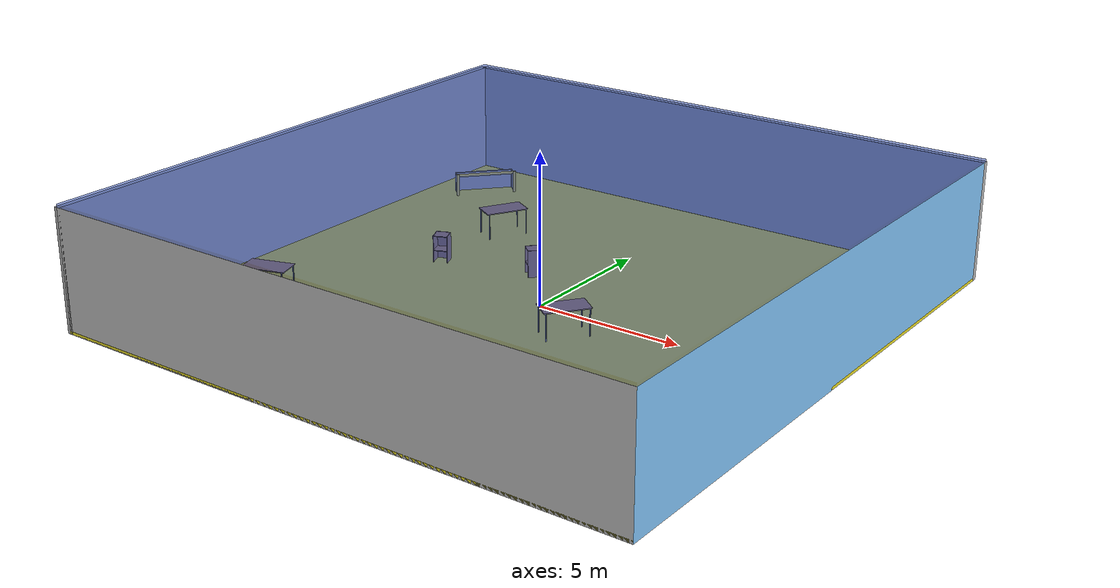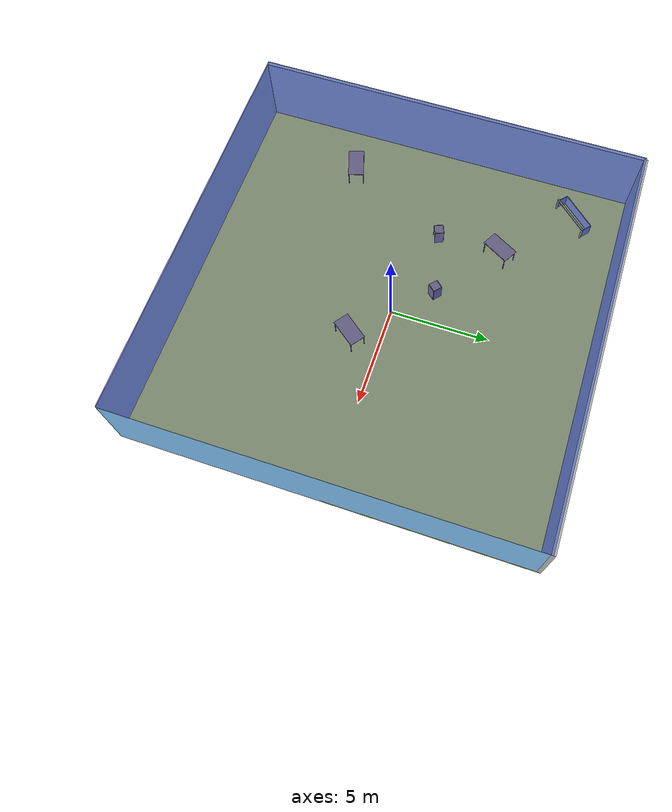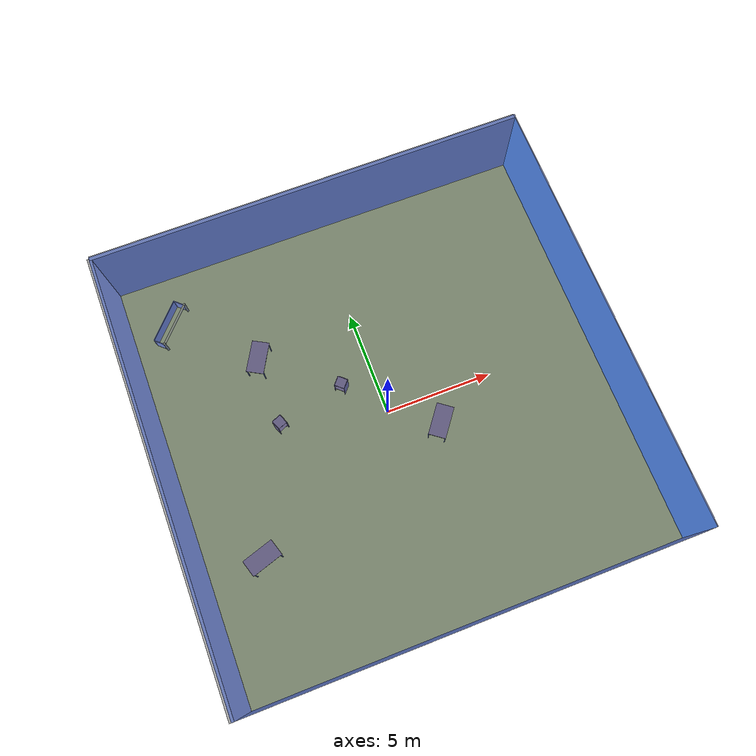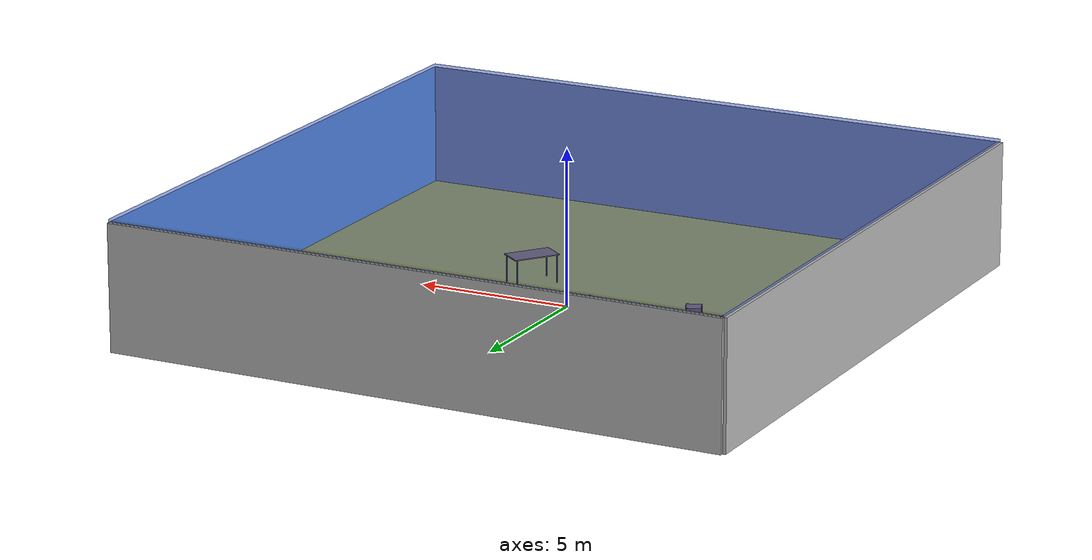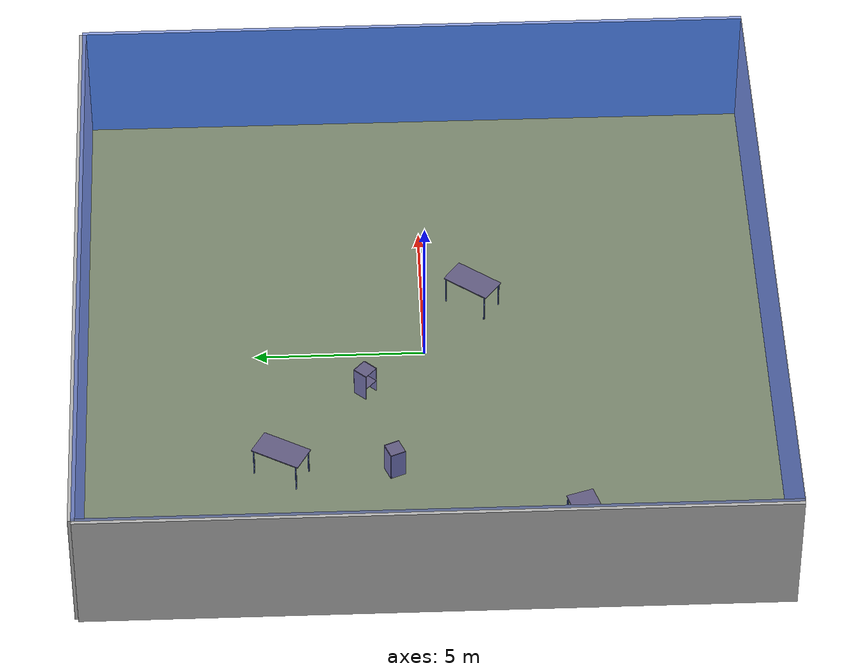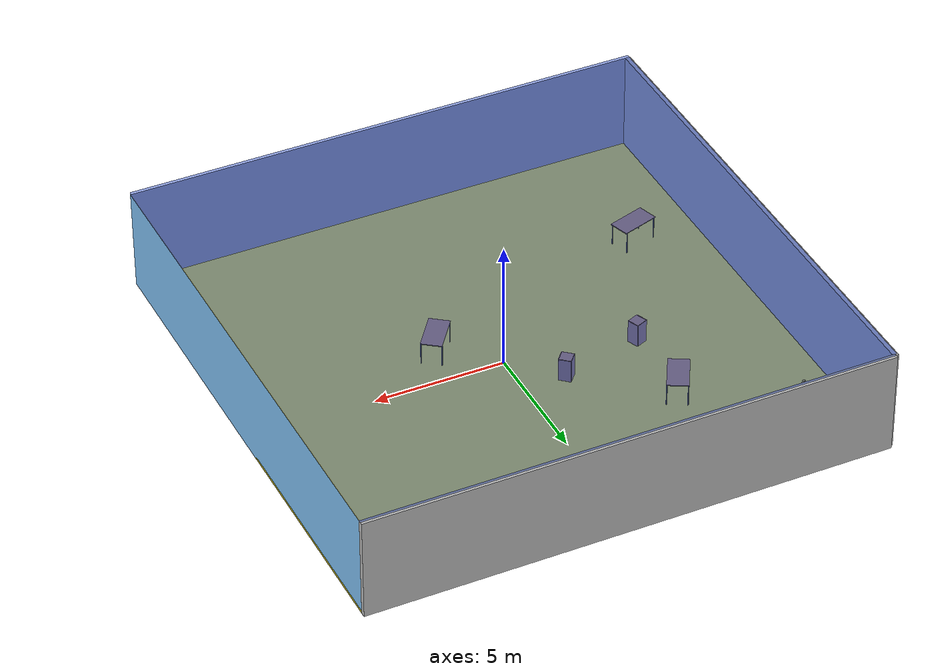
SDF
<sdf version="1.4">
 <world name="default">
  <physics type="ode">
   <max_step_size>0.001</max_step_size>
   <real_time_factor>1</real_time_factor>
   <real_time_update_rate>1000</real_time_update_rate>
   <gravity>0 0 -9.8</gravity>
  </physics>
  <scene><ambient>0.4 0.4 0.4 1</ambient><background>0.7 0.7 0.7 1</background><shadows>1</shadows></scene>
  <model name="Surrounding">
   <static>1</static>
   <link name="Ceiling">
    <collision name="Ceiling_Collision"><geometry><box><size>20 20 0.1</size></box></geometry></collision>
    <visual name="Ceiling_Visual">
     <geometry><box><size>20 20 0.1</size></box></geometry>
     <material>
      <script><uri>file://media/materials/scripts/gazebo.material</uri><name>Gazebo/BlueTransparent</name></script>
     </material>
    </visual>
    <pose>0 0 4.05 0 0 0</pose>
   </link>
   <link name="Wall_South">
    <collision name="Wall_South_Collision">
     <geometry><box><size>20 0 4</size></box></geometry>
     <pose>0 0 2 0 -0 0</pose>
    </collision>
    <visual name="Wall_South_Visual">
     <pose>0 0 2 0 -0 0</pose>
     <geometry><box><size>20 0 4</size></box></geometry>
     <material>
      <script><uri>file://media/materials/scripts/gazebo.material</uri><name>Gazebo/LightOn</name></script>
     </material>
    </visual>
    <velocity_decay><linear>0</linear><angular>0</angular></velocity_decay>
    <pose>0 -10 0 0 -0 0</pose>
   </link>
   <link name="Wall_East">
    <collision name="Wall_21_Collision">
     <geometry><box><size>20 0 4</size></box></geometry>
     <pose>0 0 2 0 -0 0</pose>
    </collision>
    <visual name="Wall_21_Visual">
     <pose>0 0 2 0 -0 0</pose>
     <geometry><box><size>20 0 4</size></box></geometry>
     <material>
      <script><uri>file://media/materials/scripts/gazebo.material</uri><name>Gazebo/SkyBlue</name></script>
     </material>
    </visual>
    <velocity_decay><linear>0</linear><angular>0</angular></velocity_decay>
    <pose>10 0 0 0 -0 1.5708</pose>
   </link>
   <link name="Wall_North">
    <collision name="Wall_22_Collision">
     <geometry><box><size>20 0.2 4</size></box></geometry>
     <pose>0 0 2 0 -0 0</pose>
    </collision>
    <visual name="Wall_22_Visual">
     <pose>0 0 2 0 -0 0</pose>
     <geometry><box><size>20 0.2 4</size></box></geometry>
     <material>
      <script><uri>file://media/materials/scripts/gazebo.material</uri><name>Gazebo/CloudySky</name></script>
     </material>
    </visual>
    <velocity_decay><linear>0</linear><angular>0</angular></velocity_decay>
    <pose>0 10 0 0 -0 0</pose>
   </link>
   <link name="Wall_West">
    <collision name="Wall_23_Collision">
     <geometry><box><size>20 0.2 4</size></box></geometry>
     <pose>0 0 2 0 -0 0</pose>
    </collision>
    <visual name="Wall_23_Visual">
     <pose>0 0 2 0 -0 0</pose>
     <geometry><box><size>20 0.2 4</size></box></geometry>
     <material>
      <script><uri>file://media/materials/scripts/gazebo.material</uri><name>Gazebo/PioneerBody</name></script>
     </material>
    </visual>
    <velocity_decay><linear>0</linear><angular>0</angular></velocity_decay>
    <pose>-10 0 0 0 0 -1.5708</pose>
   </link>
   <link name="Ground_link">
    <collision name="collision">
     <pose>0 0 .05 0 -0 0</pose>
     <geometry><box><size>20 20 0.1</size></box></geometry>
    </collision>
    <visual name="visual">
     <pose>0 0 .05 0 -0 0</pose>
     <geometry><box><size>20 20 0.1</size></box></geometry>
     <material>
      <script><uri>file://media/materials/scripts/gazebo.material</uri><name>Gazebo/YellowGlow</name></script>
     </material>
    </visual>
   </link>
   <static>1</static>
  </model>
  <spherical_coordinates>
   <surface_model>EARTH_WGS84</surface_model>
   <latitude_deg>0</latitude_deg>
   <longitude_deg>0</longitude_deg>
   <elevation>0</elevation>
   <heading_deg>0</heading_deg>
  </spherical_coordinates>
  <light name="lightball_0" type="diffuse">
   <diffuse>0.8 0.8 0.8 1</diffuse>
   <specular>0.2 0.2 0.2 1</specular>
   <attenuation>
    <range>100</range>
    <constant>0.7</constant>
    <linear>0.01</linear>
    <quadratic>0.001</quadratic>
   </attenuation>
   <direction>-0.5 0.1 -0.9</direction>
   <pose>6.83173820157 -1.8046738377 3.46066389849 0 0 0</pose>
  </light>
  <light name="lightball_1" type="diffuse">
   <diffuse>0.8 0.8 0.8 1</diffuse>
   <specular>0.2 0.2 0.2 1</specular>
   <attenuation>
    <range>100</range>
    <constant>0.7</constant>
    <linear>0.01</linear>
    <quadratic>0.001</quadratic>
   </attenuation>
   <direction>-0.5 0.1 -0.9</direction>
   <pose>-9.12523619573 -8.28907562996 3.14548461597 0 0 0</pose>
  </light>
  <light name="lightball_2" type="diffuse">
   <diffuse>0.8 0.8 0.8 1</diffuse>
   <specular>0.2 0.2 0.2 1</specular>
   <attenuation>
    <range>100</range>
    <constant>0.7</constant>
    <linear>0.01</linear>
    <quadratic>0.001</quadratic>
   </attenuation>
   <direction>-0.5 0.1 -0.9</direction>
   <pose>7.34732906097 -0.271490618478 3.13710620634 0 0 0</pose>
  </light>
  <light name="lightball_3" type="diffuse">
   <diffuse>0.8 0.8 0.8 1</diffuse>
   <specular>0.2 0.2 0.2 1</specular>
   <attenuation>
    <range>100</range>
    <constant>0.7</constant>
    <linear>0.01</linear>
    <quadratic>0.001</quadratic>
   </attenuation>
   <direction>-0.5 0.1 -0.9</direction>
   <pose>1.97719889198 -3.97903753956 2.46125400592 0 0 0</pose>
  </light>
  <include><uri>model://table</uri><pose>-7.38615163997 -4.34710725627 0 0 0 0.305457715883</pose></include>
  <include>
   <uri>model://robocup_3Dsim_goal</uri>
   <pose>-7.81464736836 7.25298747603 0 0 0 2.40325561671</pose>
  </include>
  <include><uri>model://cabinet</uri><pose>-4.77964628767 1.03298207817 0 0 0 1.96540810501</pose></include>
  <include><uri>model://table</uri><pose>-4.71859351554 4.28114151566 0 0 0 1.06092975724</pose></include>
  <include><uri>model://cabinet</uri><pose>-1.59001688982 1.79115901428 0 0 0 0.84324247287</pose></include>
  <include><uri>model://table</uri><pose>1.97137877473 -1.4813113305 0 0 0 0.927238326531</pose></include>
 </world>
</sdf>

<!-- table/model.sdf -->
<sdf version="1.5">
  <model name="table">
    <static>true</static>
    <link name="link">
      <collision name="surface">
        <pose>0 0 1.0 0 0 0</pose>
        <geometry>
          <box>
            <size>1.5 0.8 0.03</size>
          </box>
        </geometry>
        <surface>
          <friction>
            <ode>
              <mu>0.6</mu>
              <mu2>0.6</mu2>
            </ode>
          </friction>
        </surface>
      </collision>
      <visual name="visual1">
        <pose>0 0 1.0 0 0 0</pose>
        <geometry>
          <box>
            <size>1.5 0.8 0.03</size>
          </box>
        </geometry>
        <material>
          <script>
            <uri>model://media/materials/scripts/gazebo.material</uri>
            <name>Gazebo/Wood</name>
          </script>
        </material>
      </visual>
      <collision name="front_left_leg">
        <pose>0.68 0.38 0.5 0 0 0</pose>
        <geometry>
          <cylinder>
            <radius>0.02</radius>
            <length>1.0</length>
          </cylinder>
        </geometry>
      </collision>
      <visual name="front_left_leg">
        <pose>0.68 0.38 0.5 0 0 0</pose>
        <geometry>
          <cylinder>
            <radius>0.02</radius>
            <length>1.0</length>
          </cylinder>
        </geometry>
        <material>
          <script>
            <uri>model://media/materials/scripts/gazebo.material</uri>
            <name>Gazebo/Grey</name>
          </script>
        </material>
      </visual>
      <collision name="front_right_leg">
        <pose>0.68 -0.38 0.5 0 0 0</pose>
        <geometry>
          <cylinder>
            <radius>0.02</radius>
            <length>1.0</length>
          </cylinder>
        </geometry>
      </collision>
      <visual name="front_right_leg">
        <pose>0.68 -0.38 0.5 0 0 0</pose>
        <geometry>
          <cylinder>
            <radius>0.02</radius>
            <length>1.0</length>
          </cylinder>
        </geometry>
        <material>
          <script>
            <uri>model://media/materials/scripts/gazebo.material</uri>
            <name>Gazebo/Grey</name>
          </script>
        </material>
      </visual>
      <collision name="back_right_leg">
        <pose>-0.68 -0.38 0.5 0 0 0</pose>
        <geometry>
          <cylinder>
            <radius>0.02</radius>
            <length>1.0</length>
          </cylinder>
        </geometry>
      </collision>
      <visual name="back_right_leg">
        <pose>-0.68 -0.38 0.5 0 0 0</pose>
        <geometry>
          <cylinder>
            <radius>0.02</radius>
            <length>1.0</length>
          </cylinder>
        </geometry>
        <material>
          <script>
            <uri>model://media/materials/scripts/gazebo.material</uri>
            <name>Gazebo/Grey</name>
          </script>
        </material>
      </visual>
      <collision name="back_left_leg">
        <pose>-0.68 0.38 0.5 0 0 0</pose>
        <geometry>
          <cylinder>
            <radius>0.02</radius>
            <length>1.0</length>
          </cylinder>
        </geometry>
      </collision>
      <visual name="back_left_leg">
        <pose>-0.68 0.38 0.5 0 0 0</pose>
        <geometry>
          <cylinder>
            <radius>0.02</radius>
            <length>1.0</length>
          </cylinder>
        </geometry>
        <material>
          <script>
            <uri>model://media/materials/scripts/gazebo.material</uri>
            <name>Gazebo/Grey</name>
          </script>
        </material>
      </visual>
    </link>
  </model>
</sdf>

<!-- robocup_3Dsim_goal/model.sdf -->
<sdf version="1.5">
  <model name="robocup_3d_goal">
    <static>true</static>
    <link name="left_post">
      <pose>0 1.05 0.45 0 0 0</pose>
      <collision name="collision">
        <geometry>
          <cylinder>
            <radius>0.05</radius>
            <length>0.9</length>
          </cylinder>
        </geometry>
      </collision>
      <visual name="visual">
        <geometry>
          <cylinder>
            <radius>0.05</radius>
            <length>0.9</length>
          </cylinder>
        </geometry>
        <material>
          <script>
            <uri>file://media/materials/scripts/gazebo.material</uri>
            <name>Gazebo/ZincYellow</name>
          </script>
        </material>
      </visual>
    </link>
    <link name="left_support_horiz_lower">
      <pose>0.30 1.05 0.01 0 0 0</pose>
      <collision name="collision">
        <geometry>
          <box>
            <size>0.50 0.02 0.02</size>
          </box>
        </geometry>
      </collision>
      <visual name="visual">
        <geometry>
          <box>
            <size>0.50 0.02 0.02</size>
          </box>
        </geometry>
        <material>
          <script>
            <uri>file://media/materials/scripts/gazebo.material</uri>
            <name>Gazebo/White</name>
          </script>
        </material>
      </visual>
    </link>
    <link name="left_support_horiz_upper">
      <pose>0.30 1.05 0.79 0 0 0</pose>
      <collision name="collision">
        <geometry>
          <box>
            <size>0.50 0.02 0.02</size>
          </box>
        </geometry>
      </collision>
      <visual name="visual">
        <geometry>
          <box>
            <size>0.50 0.02 0.02</size>
          </box>
        </geometry>
        <material>
          <script>
            <uri>file://media/materials/scripts/gazebo.material</uri>
            <name>Gazebo/White</name>
          </script>
        </material>
      </visual>
    </link>
    <link name="left_support_vertical">
      <pose>0.56 1.05 0.4 0 1.5708 0</pose>
      <collision name="collision">
        <geometry>
          <box>
            <size>0.80 0.02 0.02</size>
          </box>
        </geometry>
      </collision>
      <visual name="visual">
        <geometry>
          <box>
            <size>0.80 0.02 0.02</size>
          </box>
        </geometry>
        <material>
          <script>
            <uri>file://media/materials/scripts/gazebo.material</uri>
            <name>Gazebo/White</name>
          </script>
        </material>
      </visual>
    </link>
    <link name="right_support_horiz_lower">
      <pose>0.30 -1.05 0.01 0 0 0</pose>
      <collision name="collision">
        <geometry>
          <box>
            <size>0.50 0.02 0.02</size>
          </box>
        </geometry>
      </collision>
      <visual name="visual">
        <geometry>
          <box>
            <size>0.50 0.02 0.02</size>
          </box>
        </geometry>
        <material>
          <script>
            <uri>file://media/materials/scripts/gazebo.material</uri>
            <name>Gazebo/White</name>
          </script>
        </material>
      </visual>
    </link>
    <link name="right_support_horiz_upper">
      <pose>0.30 -1.05 0.79 0 0 0</pose>
      <collision name="collision">
        <geometry>
          <box>
            <size>0.50 0.02 0.02</size>
          </box>
        </geometry>
      </collision>
      <visual name="visual">
        <geometry>
          <box>
            <size>0.50 0.02 0.02</size>
          </box>
        </geometry>
        <material>
          <script>
            <uri>file://media/materials/scripts/gazebo.material</uri>
            <name>Gazebo/White</name>
          </script>
        </material>
      </visual>
    </link>
    <link name="right_support_vertical">
      <pose>0.56 -1.05 0.4 0 1.5708 0</pose>
      <collision name="collision">
        <geometry>
          <box>
            <size>0.80 0.02 0.02</size>
          </box>
        </geometry>
      </collision>
      <visual name="visual">
        <geometry>
          <box>
            <size>0.80 0.02 0.02</size>
          </box>
        </geometry>
        <material>
          <script>
            <uri>file://media/materials/scripts/gazebo.material</uri>
            <name>Gazebo/White</name>
          </script>
        </material>
      </visual>
    </link>
    <link name="center_support_horiz_lower">
      <pose>0.56 0 0.01 0 1.5708 0</pose>
      <collision name="collision">
        <geometry>
          <box>
            <size>0.02 2.08 0.02</size>
          </box>
        </geometry>
      </collision>
      <visual name="visual">
        <geometry>
          <box>
            <size>0.02 2.08 0.02</size>
          </box>
        </geometry>
        <material>
          <script>
            <uri>file://media/materials/scripts/gazebo.material</uri>
            <name>Gazebo/White</name>
          </script>
        </material>
      </visual>
    </link>
    <link name="center_support_horiz_upper">
      <pose>0.56 0 0.79 0 1.5708 0</pose>
      <collision name="collision">
        <geometry>
          <box>
            <size>0.02 2.08 0.02</size>
          </box>
        </geometry>
      </collision>
      <visual name="visual">
        <geometry>
          <box>
            <size>0.02 2.08 0.02</size>
          </box>
        </geometry>
        <material>
          <script>
            <uri>file://media/materials/scripts/gazebo.material</uri>
            <name>Gazebo/White</name>
          </script>
        </material>
      </visual>
    </link>
    <link name="right_post">
      <pose>0 -1.05 0.45 0 0 0</pose>
      <collision name="collision">
        <geometry>
          <cylinder>
            <radius>0.05</radius>
            <length>0.9</length>
          </cylinder>
        </geometry>
      </collision>
      <visual name="visual">
        <geometry>
          <cylinder>
            <radius>0.05</radius>
            <length>0.9</length>
          </cylinder>
        </geometry>
        <material>
          <script>
            <uri>file://media/materials/scripts/gazebo.material</uri>
            <name>Gazebo/ZincYellow</name>
          </script>
        </material>
      </visual>
    </link>
    <link name="crossbar">
      <pose>0 0 0.85 1.57 1.57 0</pose>
      <collision name="collision">
        <geometry>
          <cylinder>
            <radius>0.05</radius>
            <length>2.0</length>
          </cylinder>
        </geometry>
      </collision>
      <visual name="visual">
        <geometry>
          <cylinder>
            <radius>0.05</radius>
            <length>2.0</length>
          </cylinder>
        </geometry>
        <material>
          <script>
            <uri>file://media/materials/scripts/gazebo.material</uri>
            <name>Gazebo/ZincYellow</name>
          </script>
        </material>
      </visual>
    </link>
    <link name="center_net">
      <pose>0.56 0 0.40 0 0 0</pose>
      <collision name="collision">
        <geometry>
          <box>
            <size>0.01 2.1 0.80</size>
          </box>
        </geometry>
      </collision>
      <visual name="visual">
        <geometry>
          <box>
            <size>0.01 2.1 0.80</size>
          </box>
        </geometry>
        <material>
          <script>
            <uri>model://../model_source/models/robocup09_spl_field/materials/scripts/</uri>
            <uri>model://../model_source/models/robocup09_spl_field/materials/textures/</uri>
            <name>RoboCup/Net</name>
          </script>
        </material>
      </visual>
    </link>
    <link name="left_net">
      <pose>0.30 1.05 0.40 0 0 0</pose>
      <collision name="collision">
        <geometry>
          <box>
            <size>0.50 0.01 0.76</size>
          </box>
        </geometry>
      </collision>
      <visual name="visual">
        <geometry>
          <box>
            <size>0.50 0.01 0.76</size>
          </box>
        </geometry>
        <material>
          <script>
            <uri>model://../model_source/models/robocup09_spl_field/materials/scripts/</uri>
            <uri>model://../model_source/models/robocup09_spl_field/materials/textures/</uri>
            <name>RoboCup/Net</name>
          </script>
        </material>
      </visual>
    </link>
    <link name="right_net">
      <pose>0.30 -1.05 0.40 0 0 0</pose>
      <collision name="collision">
        <geometry>
          <box>
            <size>0.50 0.01 0.76</size>
          </box>
        </geometry>
      </collision>
      <visual name="visual">
        <geometry>
          <box>
            <size>0.50 0.01 0.76</size>
          </box>
        </geometry>
        <material>
          <script>
            <uri>model://../model_source/models/robocup09_spl_field/materials/scripts/</uri>
            <uri>model://../model_source/models/robocup09_spl_field/materials/textures/</uri>
            <name>RoboCup/Net</name>
          </script>
        </material>
      </visual>
    </link>
  </model>
</sdf>

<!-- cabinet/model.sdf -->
<sdf version="1.5">
  <model name="cabinet">
    <static>true</static>
    <link name="cabinet_bottom_plate">
      <inertial>
        <pose>0 0 -1 0 0 0</pose>
        <inertia>
          <ixx>2.050000</ixx>
          <ixy>0</ixy>
          <ixz>0</ixz>
          <iyy>2.050000</iyy>
          <iyz>0</iyz>
          <izz>2.050000</izz>
        </inertia>
        <mass>25.000000</mass>
      </inertial>
      <collision name="cabinet_bottom_plate_geom">
        <pose>0 0 0.010000 0 0 0</pose>
        <geometry>
          <box>
            <size>0.450000 0.450000 0.020000</size>
          </box>
        </geometry>
      </collision>
      <visual name="cabinet_bottom_plate_geom_visual">
        <pose>0 0 0.010000 0 0 0</pose>
        <geometry>
          <box>
            <size>0.450000 0.450000 0.020000</size>
          </box>
        </geometry>
        <material>
          <script>
            <uri>model://media/materials/scripts/gazebo.material</uri>
            <name>Gazebo/Wood</name>
          </script>
        </material>
      </visual>
      <collision name="cabinet_bottom_plate_geom_cabinet_back_plate">
        <pose>0.235000 0 0.510000 0 0 0</pose>
        <geometry>
          <box>
            <size>0.020000 0.450000 1.020000</size>
          </box>
        </geometry>
      </collision>
      <visual name="cabinet_bottom_plate_geom_cabinet_back_plate_visual">
        <pose>0.235000 0 0.510000 0 0 0</pose>
        <geometry>
          <box>
            <size>0.020000 0.450000 1.020000</size>
          </box>
        </geometry>
        <material>
          <script>
            <uri>model://media/materials/scripts/gazebo.material</uri>
            <name>Gazebo/Wood</name>
          </script>
        </material>
      </visual>
      <collision name="cabinet_bottom_plate_geom_cabinet_left_plate">
        <pose>0 0.235000 0.510000 0 0 0</pose>
        <geometry>
          <box>
            <size>0.450000 0.020000 1.020000</size>
          </box>
        </geometry>
      </collision>
      <visual name="cabinet_bottom_plate_geom_cabinet_left_plate_visual">
        <pose>0 0.235000 0.510000 0 0 0</pose>
        <geometry>
          <box>
            <size>0.450000 0.020000 1.020000</size>
          </box>
        </geometry>
        <material>
          <script>
            <uri>model://media/materials/scripts/gazebo.material</uri>
            <name>Gazebo/Wood</name>
          </script>
        </material>
      </visual>
      <collision name="cabinet_bottom_plate_geom_cabinet_middle_plate">
        <pose>0 0 0.510000 0 0 0</pose>
        <geometry>
          <box>
            <size>0.450000 0.450000 0.020000</size>
          </box>
        </geometry>
      </collision>
      <visual name="cabinet_bottom_plate_geom_cabinet_middle_plate_visual">
        <pose>0 0 0.510000 0 0 0</pose>
        <geometry>
          <box>
            <size>0.450000 0.450000 0.020000</size>
          </box>
        </geometry>
        <material>
          <script>
            <uri>model://media/materials/scripts/gazebo.material</uri>
            <name>Gazebo/Wood</name>
          </script>
        </material>
      </visual>
      <collision name="cabinet_bottom_plate_geom_cabinet_right_plate">
        <pose>0 -0.235000 0.510000 0 0 0</pose>
        <geometry>
          <box>
            <size>0.450000 0.020000 1.020000</size>
          </box>
        </geometry>
      </collision>
      <visual name="cabinet_bottom_plate_geom_cabinet_right_plate_visual">
        <pose>0 -0.235000 0.510000 0 0 0</pose>
        <geometry>
          <box>
            <size>0.450000 0.020000 1.020000</size>
          </box>
        </geometry>
        <material>
          <script>
            <uri>model://media/materials/scripts/gazebo.material</uri>
            <name>Gazebo/Wood</name>
          </script>
        </material>
      </visual>
      <collision name="cabinet_bottom_plate_geom_cabinet_top_plate">
        <pose>0 0 1.010000 0 0 0</pose>
        <geometry>
          <box>
            <size>0.450000 0.450000 0.020000</size>
          </box>
        </geometry>
      </collision>
      <visual name="cabinet_bottom_plate_geom_cabinet_top_plate_visual">
        <pose>0 0 1.010000 0 0 0</pose>
        <geometry>
          <box>
            <size>0.450000 0.450000 0.020000</size>
          </box>
        </geometry>
        <material>
          <script>
            <uri>model://media/materials/scripts/gazebo.material</uri>
            <name>Gazebo/Wood</name>
          </script>
        </material>
      </visual>
    </link>
  </model>
</sdf>
